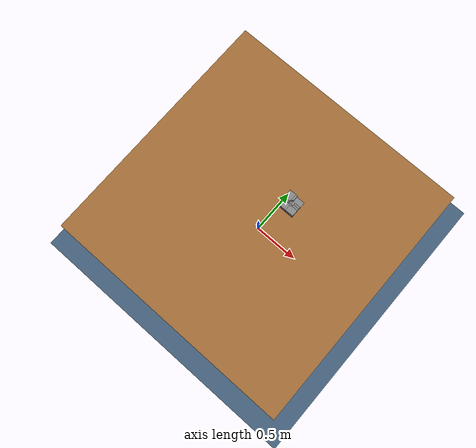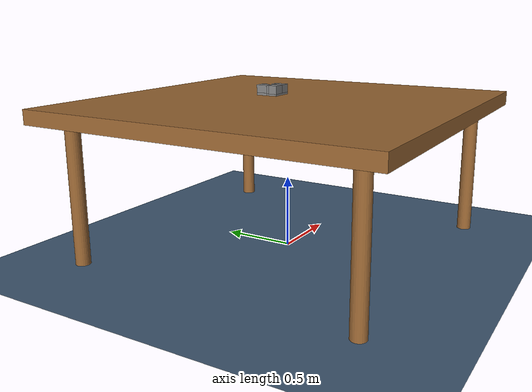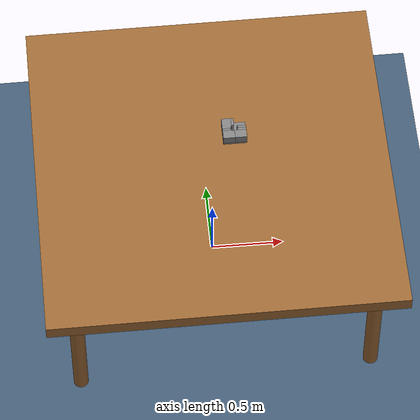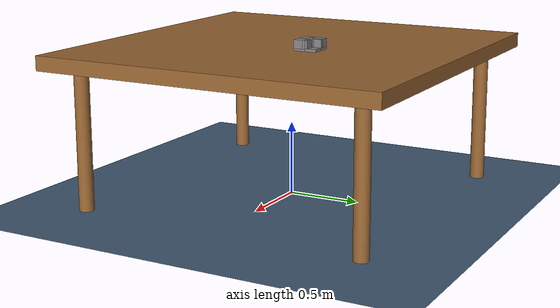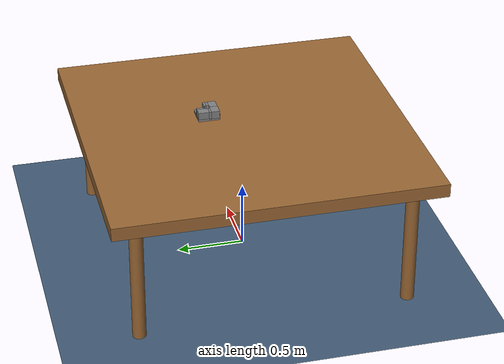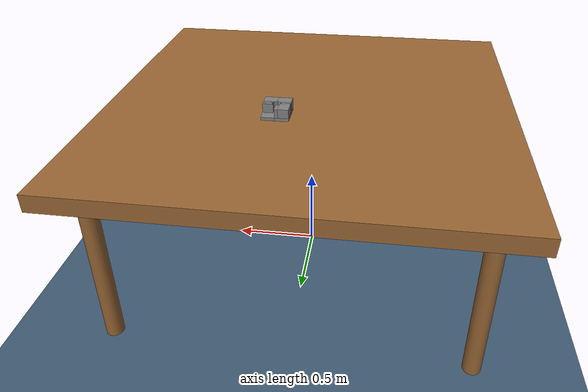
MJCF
<mujoco model="arena">
  <option viscosity="0.1" gravity="0.0 0.0 0.0" timestep="0.002"/>
  <option>
    <flag  multiccd="disable" warmstart="enable"/>
  </option>
  <visual>
    <quality shadowsize="8192" />
  </visual>
  <compiler angle="radian"/>
  <default>
    <default class="visual">
      <geom group="3" type="mesh" contype="0" conaffinity="0"/>
    </default>
    <default class="collision">
      <geom group="2" type="mesh" solimp="0.9 0.95 0.001 0.5 2" solref="0.02 1" condim="6" />
    </default>
  </default>
  <asset>
    <texture name="chequered" type="2d" builtin="checker" width="300" height="300"
             rgb1="0.2 0.3 0.4" rgb2="0.3 0.4 0.5"/>

    <!-- Material using the checker texture and grid-like repeat -->
    <material name="grid" texture="chequered" texrepeat="5 5" reflectance="0.2"/>

    <!-- Simple material representing wood with brown color -->
    <material name="Wood" rgba="0.6 0.4 0.2 1.0"/>

    <material name="None" specular="0.8000000000000002" shininess="0.5" rgba="0.8 0.8 0.8 1"/>
    <mesh name="hole0" file="peg_hole_stl/hole_27/hole_27_collision_0.obj" scale="0.001 0.001 0.001"/>
    <mesh name="hole1" file="peg_hole_stl/hole_27/hole_27_collision_1.obj" scale="0.001 0.001 0.001"/>
    <mesh name="hole2" file="peg_hole_stl/hole_27/hole_27_collision_2.obj" scale="0.001 0.001 0.001"/>
    <mesh name="hole3" file="peg_hole_stl/hole_27/hole_27_collision_3.obj" scale="0.001 0.001 0.001"/>
    <mesh name="hole4" file="peg_hole_stl/hole_27/hole_27_collision_4.obj" scale="0.001 0.001 0.001"/>
    <mesh name="hole5" file="peg_hole_stl/hole_27/hole_27_collision_5.obj" scale="0.001 0.001 0.001"/>
    <mesh name="hole6" file="peg_hole_stl/hole_27/hole_27_collision_6.obj" scale="0.001 0.001 0.001"/>
    <mesh name="hole7" file="peg_hole_stl/hole_27/hole_27_collision_7.obj" scale="0.001 0.001 0.001"/>
    <mesh name="hole8" file="peg_hole_stl/hole_27/hole_27_collision_8.obj" scale="0.001 0.001 0.001"/>
    <mesh name="hole9" file="peg_hole_stl/hole_27/hole_27_collision_9.obj" scale="0.001 0.001 0.001"/>
    <mesh name="hole10" file="peg_hole_stl/hole_27/hole_27_collision_10.obj" scale="0.001 0.001 0.001"/>
    <mesh name="hole_visual" file="peg_hole_stl/hole_27/hole_27.obj" scale="0.001 0.001 0.001"/>
  </asset>

  <statistic center='0 0 0'/>
  <worldbody>
    <body name="floor" pos="0 0 0">
      <geom type="plane" size="2 2 0.1" material="grid"/>
    </body>

    <body name="table" pos="0 0 0">
        <!-- Tabletop as a box geometry with Wood material -->
        <geom name="table_top" type="box" size="1.2 1.2 0.05" pos="0 0 1" material="Wood"/>
        <geom type="cylinder" size="0.05 0.5" pos="-1.0 -1.0 0.5" material="Wood"/>
        <geom type="cylinder" size="0.05 0.5" pos="1.0 -1.0 0.5" material="Wood"/>
        <geom type="cylinder" size="0.05 0.5" pos="-1.0 1.0 0.5" material="Wood"/>
        <geom type="cylinder" size="0.05 0.5" pos="1.0 1.0 0.5" material="Wood"/>
    </body>

    <!-- workspace defined with two cylinder: outer - inner -->
    <body name="outer_workspace" pos="0.0 0.0 1.075" euler="0  0.0  0">
        <geom name="outer_workspace"  type="cylinder" size="0.4 0.001" rgba="0 1 0 0.15" conaffinity="0" contype="0" group="4"/>
    </body>
    <body name="inner_workspace" pos="0.0 0.0 1.0" euler="0  0.0  0">
        <geom name="inner_workspace" type="cylinder" size="0.27 0.001" rgba="1 0 0 0.15" conaffinity="0" contype="0" group="4"/>
    </body>

    <body name="hole" euler="1.5707 0 0" pos="0.17 0.23 1.03" mocap="true">
      <geom material="None" mesh="hole_visual" class="visual" mass="0.05"/>
      <geom mesh="hole0" class="collision"/>
      <geom mesh="hole1" class="collision"/>
      <geom mesh="hole2" class="collision"/>
      <geom mesh="hole3" class="collision"/>
      <geom mesh="hole4" class="collision"/>
      <geom mesh="hole5" class="collision"/>
      <geom mesh="hole6" class="collision"/>
      <geom mesh="hole7" class="collision"/>
      <geom mesh="hole8" class="collision"/>
      <geom mesh="hole9" class="collision"/>
      <geom mesh="hole10" class="collision"/>
      <body name="hole_frame" euler="-1.5707 0 0" pos="0 0.03 0"/>
    </body>

    <body name="camera_center" euler="0  0.0  0" pos="0.3 0.0 1.1">
        </body>

    <body name="fixed_camera_body" euler="0  0.0  0" pos="0.65 0.1 2.3">
      <camera name="fixed_camera"  mode="targetbody" target="camera_center" fovy="42.5" />
    </body>

  </worldbody>
</mujoco>
